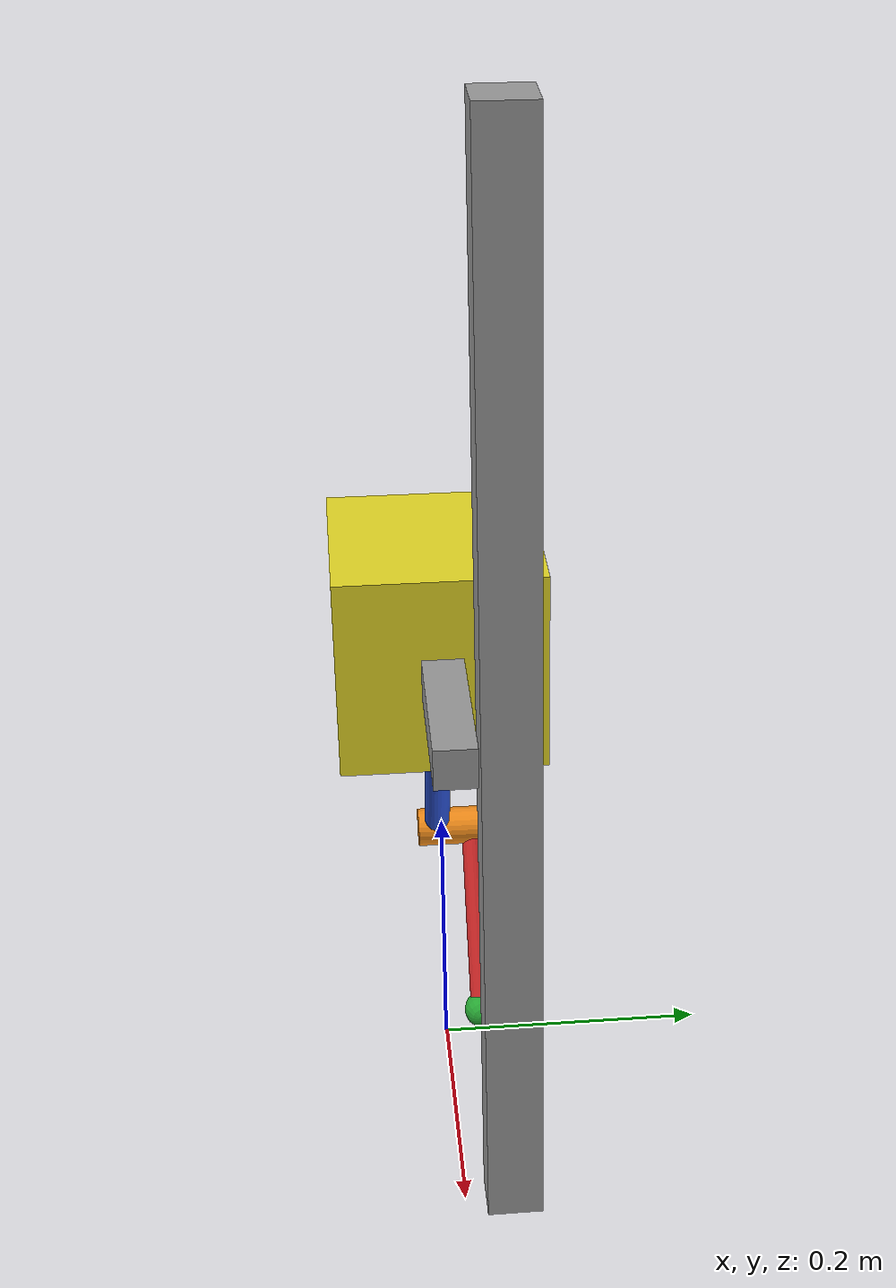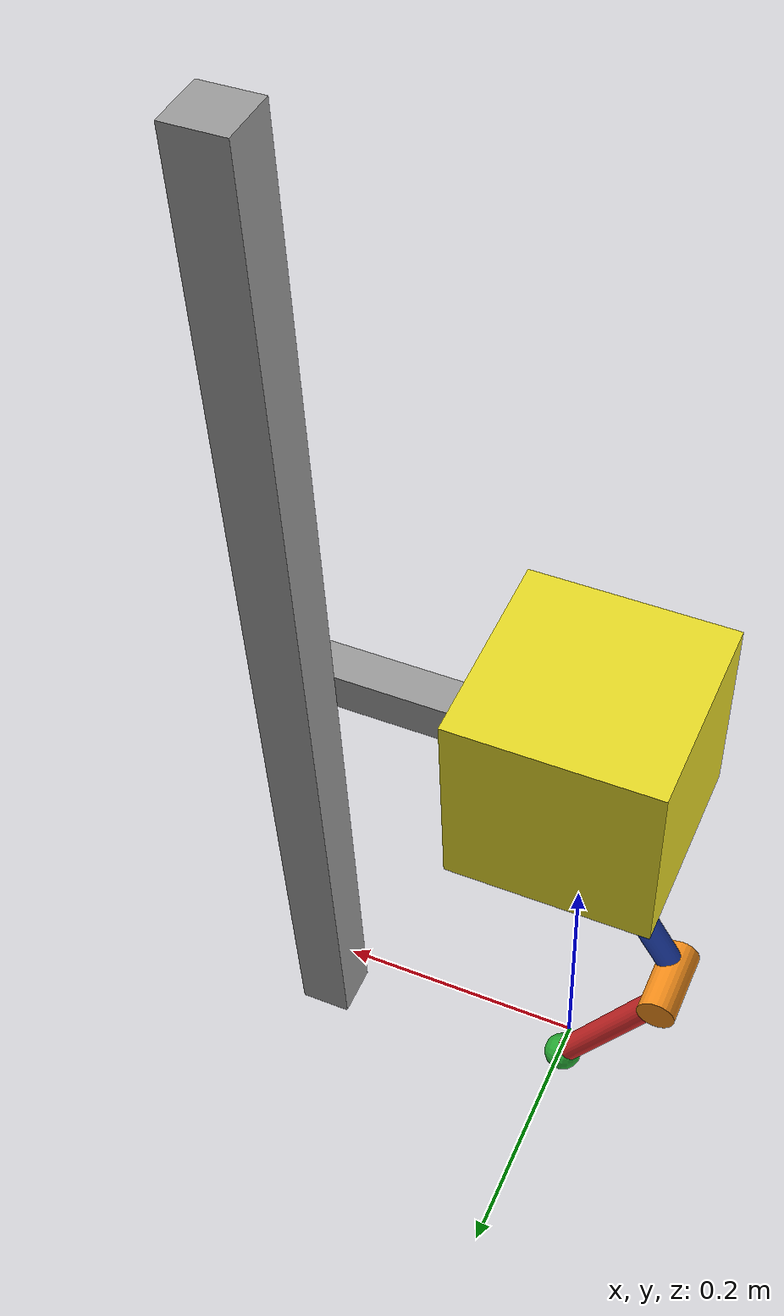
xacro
<?xml version="1.0"?>

<robot name="my_robot" xmlns:xacro="http://ros.org/wiki/xacro">

  <xacro:property name="pi" value="3.1415926535897931" />

  <link name="world"/>

  <joint name="base_joint" type="fixed">
    <parent link="world"/>
    <child link="base_link"/>
  </joint>

  <link name="base_link">
    <inertial>
      <mass value="10"/>
      <origin xyz="0.2 0.035 0.4" rpy="0 0 0"/>
      <inertia ixx="1.0" ixy="0.0" ixz="0.0" iyy="1.0" iyz="0.0" izz="1.0"/>
    </inertial>
    <visual>
      <origin xyz="0.2 0.035 0.4" rpy="0 0 0"/>
      <geometry>
        <box size="0.04 0.04 0.8"/>
      </geometry>
    </visual>
    <collision>
      <origin xyz="0.2 0.035 0.4" rpy="0 0 0"/>
      <geometry>
        <box size="0.04 0.04 0.8"/>
      </geometry>
    </collision>
  </link>
  <gazebo reference="base_link">
    <material>Gazebo/Gray</material>
  </gazebo>

  <joint name="guide_joint" type="prismatic">
    <parent link="base_link"/>
    <child link="guide_link"/>
    <limit upper="0.4" lower="-0.2" effort="1000" velocity="100"/>
    <origin xyz="0.2 0 0.365" rpy="0 ${-90*pi/180} 0"/>
    <dynamics damping="0.1"/>
  </joint>

  <link name="guide_link">
    <inertial>
      <mass value="0.1"/>
      <origin xyz="0 0 0.0625" rpy="0 ${90*pi/180} 0"/>
      <inertia ixx="1.0" ixy="0.0" ixz="0.0" iyy="1.0" iyz="0.0" izz="1.0"/>
    </inertial>
    <visual>
      <origin xyz="0 0 0.0625" rpy="0 ${90*pi/180} 0"/>
      <geometry>
        <box size="0.125 0.03 0.03"/>
      </geometry>
    </visual>
    <collision>
      <origin xyz="0 0 0.0625" rpy="0 ${90*pi/180} 0"/>
      <geometry>
        <box size="0.125 0.03 0.03"/>
      </geometry>
    </collision>
  </link>
  <gazebo reference="guide_link">
    <material>Gazebo/Gray</material>
  </gazebo>

  <joint name="hashida_joint" type="fixed">
    <parent link="guide_link"/>
    <child link="hashida_box"/>
  </joint>

  <link name="hashida_box">
    <inertial>
      <mass value="3"/>
      <origin xyz="0 0 0.2" rpy="0 0 0"/>
      <inertia ixx="1.0" ixy="0.0" ixz="0.0" iyy="1.0" iyz="0.0" izz="1.0"/>
    </inertial>
    <visual>
      <origin xyz="0 0 0.2" rpy="0 0 0"/>
      <geometry>
        <box size="0.15 0.15 0.15"/>
      </geometry>
    </visual>
    <collision>
      <origin xyz="0 0 0.2" rpy="0 0 0"/>
      <geometry>
        <box size="0.15 0.15 0.15"/>
      </geometry>
    </collision>
  </link>
  <gazebo reference="hashida_box">
    <material>Gazebo/Yellow</material>
  </gazebo>

  <joint name="arm2_joint_link_joint" type="fixed">
    <parent link="hashida_box"/>
    <child link="arm2_joint_link"/>
  </joint>

  <link name="arm2_joint_link">
    <inertial>
      <mass value="0.1"/>
      <origin xyz="-0.09 0 0.205" rpy="0 0 0"/>
      <inertia ixx="1.0" ixy="0.0" ixz="0.0" iyy="1.0" iyz="0.0" izz="1.0"/>
    </inertial>
    <visual>
      <origin xyz="-0.09 0 0.205" rpy="0 0 0"/>
      <geometry>
        <sphere radius="0.015"/>
      </geometry>
    </visual>
    <collision>
      <origin xyz="-0.09 0 0.205" rpy="0 0 0"/>
      <geometry>
        <sphere radius="0.015"/>
      </geometry>
    </collision>
  </link>
  <gazebo reference="arm2_joint_link">
    <material>Gazebo/Orange</material>
  </gazebo>

  <joint name="arm2_joint" type="revolute">
    <parent link="arm2_joint_link"/>
    <child link="arm2_link"/>
    <limit upper="0.5" lower="0.0" effort="1000" velocity="100"/>
    <axis xyz="0 1 0"/>
    <origin xyz="-0.09 0 0.205" rpy="0 0 0"/>
    <dynamics damping="0.1"/>
  </joint>
  <transmission name="arm2_trans">
    <type>transmission_interface/SimpleTransmission</type>
    <joint name="arm2_joint">
      <hardwareInterface>hardware_interface/EffortJointInterface</hardwareInterface>
    </joint>
    <actuator name="arm2_motor">
       <hardwareInterface>hardware_interface/EffortJointInterface</hardwareInterface>
       <mechanismReduction>1</mechanismReduction>
    </actuator>
  </transmission>

  <link name="arm2_link">
    <inertial>
      <mass value="0.08"/>
      <origin xyz="-0.06495 0 0.0375" rpy="0 ${-60*pi/180} 0"/>
      <inertia ixx="1.0" ixy="0.0" ixz="0.0" iyy="1.0" iyz="0.0" izz="1.0"/>
    </inertial>
    <visual>
      <origin xyz="-0.06495 0 0.0375" rpy="0 ${-60*pi/180} 0"/>
      <geometry>
        <cylinder length="0.15" radius="0.01"/>
      </geometry>
    </visual>
    <collision>
      <origin xyz="-0.06495 0 0.0375" rpy="0 ${-60*pi/180} 0"/>
      <geometry>
        <cylinder length="0.15" radius="0.01"/>
      </geometry>
    </collision>
  </link>
  <gazebo reference="arm2_link">
    <material>Gazebo/Blue</material>
  </gazebo>

  <joint name="arm1_joint" type="revolute">
    <parent link="arm2_link"/>
    <child link="arm1_joint_link"/>
    <limit upper="0.0" lower="-1.0" effort="1000" velocity="100"/>
    <axis xyz="0 1 0"/>
    <origin xyz="-0.1299 0.03 0.075" rpy="0 0 0"/>
    <dynamics damping="0.1"/>
  </joint>
  <transmission name="arm1_trans">
    <type>transmission_interface/SimpleTransmission</type>
    <joint name="arm1_joint">
      <hardwareInterface>hardware_interface/EffortJointInterface</hardwareInterface>
    </joint>
    <actuator name="arm1_motor">
       <hardwareInterface>hardware_interface/EffortJointInterface</hardwareInterface>
       <mechanismReduction>1</mechanismReduction>
    </actuator>
  </transmission>
  <gazebo reference="arm1_joint">
  </gazebo>

  <link name="arm1_joint_link">
    <inertial>
      <origin xyz="0 -0.015 0" rpy="${90*pi/180} 0 0"/>
      <mass value="0.1"/>
      <inertia ixx="1.0" ixy="0.0" ixz="0.0" iyy="1.0" iyz="0.0" izz="1.0"/>
    </inertial>
    <visual>
      <origin xyz="0 -0.015 0" rpy="${90*pi/180} 0 0"/>
      <geometry>
        <cylinder length="0.06" radius="0.015"/>
      </geometry>
    </visual>
    <collision>
      <origin xyz="0 -0.015 0" rpy="${90*pi/180} 0 0 "/>
      <geometry>
        <cylinder length="0.06" radius="0.015"/>
      </geometry>
    </collision>
  </link>
  <gazebo reference="arm1_joint_link">
    <material>Gazebo/Orange</material>
  </gazebo>

  <joint name="arm1_joint_link_joint" type="fixed">
    <parent link="arm1_joint_link"/>
    <child link="arm1_link"/>
  </joint>

  <link name="arm1_link">
    <inertial>
      <origin xyz="-0.06495 0 -0.0375" rpy="0 ${60*pi/180} 0"/>
      <mass value="0.08"/>
      <inertia ixx="1.0" ixy="0.0" ixz="0.0" iyy="1.0" iyz="0.0" izz="1.0"/>
    </inertial>
    <visual>
      <origin xyz="-0.06495 0 -0.0375" rpy="0 ${60*pi/180} 0"/>
      <geometry>
        <cylinder length="0.15" radius="0.01"/>
      </geometry>
    </visual>
    <collision>
      <origin xyz="-0.06495 0 -0.0375" rpy="0 ${60*pi/180} 0"/>
      <geometry>
        <cylinder length="0.15" radius="0.01"/>
      </geometry>
    </collision>
  </link>
  <gazebo reference="arm1_link">
    <material>Gazebo/Red</material>
  </gazebo>

   <joint name="arm0_joint" type="fixed">
    <parent link="arm1_link"/>
    <child link="arm0_link"/>
  </joint>

  <link name="arm0_link">
    <inertial>
      <mass value="0.1"/>
      <origin xyz="-0.1299 0 -0.075" rpy="0 0 0"/>
      <inertia ixx="1.0" ixy="0.0" ixz="0.0" iyy="1.0" iyz="0.0" izz="1.0"/>
    </inertial>
    <visual>
      <origin xyz="-0.1299 0 -0.075" rpy="0 0 0"/>
      <geometry>
        <sphere radius="0.015"/>
      </geometry>
    </visual>
    <collision>
      <origin xyz="-0.1299 0 -0.075" rpy="0 0 0"/>
      <geometry>
        <sphere radius="0.015"/>
      </geometry>
    </collision>
  </link>
  <gazebo reference="arm0_link">
    <material>Gazebo/Green</material>
  </gazebo>

  <gazebo>
    <plugin name="gazebo_ros_control" filename="libgazebo_ros_control.so">
      <robotNamespace>/my_robot</robotNamespace>
    </plugin>
  </gazebo>

</robot>
